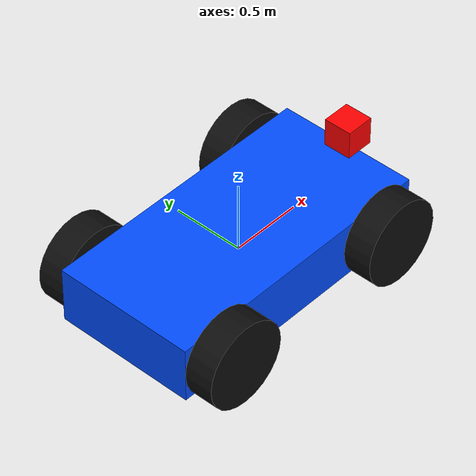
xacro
<?xml version="1.0"?>

<robot name="race_car" xmlns:xacro="http://www.ros.org/wiki/xacro">

<!-- ==================== Materials ==================== -->

  <!-- Material for the car body -->
  <material name="car_blue">
    <color rgba="0.0 0.3 1.0 1.0"/>
  </material>

  <!-- Material for the wheels -->
  <material name="wheel_black">
    <color rgba="0.05 0.05 0.05 1.0"/>
  </material>

  <!-- Material for the camera -->
  <material name="camera_red">
    <color rgba="1.0 0.0 0.0 1.0"/>
  </material>

  <!-- ==================== Base Link ==================== -->
  <!-- Main body of the race car -->
  <link name="base_link">

    <!-- Visual representation -->
    <visual>
      <geometry>
        <box size="2.0 1.0 0.4"/>
      </geometry>
      <material name="car_blue"/>
    </visual>

    <!-- Collision geometry -->
    <collision>
      <geometry>
        <box size="2.0 1.0 0.4"/>
      </geometry>
    </collision>

    <!-- Physical properties -->
    <inertial>
      <mass value="10.0"/>

      <inertia
        ixx="1.0"
        ixy="0.0"
        ixz="0.0"
        iyy="1.0"
        iyz="0.0"
        izz="1.0"/>
    </inertial>

  </link>

  <!-- ==================== Wheel Macro ==================== -->
  <!--
    This macro creates a wheel and its continuous joint.
    Parameters:
      name - wheel name
      x    - position along the X axis
      y    - position along the Y axis
  -->
  <xacro:macro name="wheel" params="name x y">

  <link name="${name}_wheel">

    <visual>
      <origin xyz="0 0 0" rpy="1.5708 0 0"/>
      <geometry>
        <cylinder radius="0.3" length="0.2"/>
      </geometry>
      <material name="wheel_black"/>
    </visual>

    <collision>
      <origin xyz="0 0 0" rpy="1.5708 0 0"/>
      <geometry>
        <cylinder radius="0.3" length="0.2"/>
      </geometry>
    </collision>

    <inertial>
      <mass value="1.0"/>
      <inertia
        ixx="0.05"
        ixy="0.0"
        ixz="0.0"
        iyy="0.05"
        iyz="0.0"
        izz="0.05"/>
    </inertial>

  </link>

  <joint name="${name}_joint" type="continuous">
    <parent link="base_link"/>
    <child link="${name}_wheel"/>
    <origin xyz="${x} ${y} 0" rpy="0 0 0"/>
    <axis xyz="0 1 0"/>
  </joint>

</xacro:macro>

  <!-- ==================== Four Wheels ==================== -->

  <!-- Front wheels -->
  <xacro:wheel name="front_left"  x="0.7"  y="0.6"/>
  <xacro:wheel name="front_right" x="0.7"  y="-0.6"/>

  <!-- Rear wheels -->
  <xacro:wheel name="rear_left"   x="-0.7" y="0.6"/>
  <xacro:wheel name="rear_right"  x="-0.7" y="-0.6"/>

<!-- ==================== Camera ==================== -->

  <!-- Camera link mounted at the front of the car -->
  <link name="camera_link">

    <!-- Visual representation of the camera -->
    <visual>
      <geometry>
        <box size="0.2 0.2 0.2"/>
      </geometry>
      <material name="camera_red"/>
    </visual>

    <!-- Collision geometry -->
    <collision>
      <geometry>
        <box size="0.2 0.2 0.2"/>
      </geometry>
    </collision>

    <!-- Physical properties -->
    <inertial>
      <mass value="0.2"/>

      <inertia
        ixx="0.001"
        ixy="0.0"
        ixz="0.0"
        iyy="0.001"
        iyz="0.0"
        izz="0.001"/>
    </inertial>

  </link>

  <!-- Fixed joint connecting the camera to the base -->
  <joint name="camera_joint" type="fixed">

    <parent link="base_link"/>
    <child link="camera_link"/>

    <!-- Camera position at the front of the car -->
    <origin xyz="1.0 0.0 0.3" rpy="0 0 0"/>

  </joint>

  <!-- ==================== Gazebo Camera Sensor ==================== -->

  <gazebo reference="camera_link">

  <sensor name="front_camera" type="camera">

    <always_on>true</always_on>
    <visualize>true</visualize>
    <update_rate>30.0</update_rate>

    <camera>
      <horizontal_fov>1.047</horizontal_fov>

      <image>
        <width>640</width>
        <height>480</height>
        <format>R8G8B8</format>
      </image>

      <clip>
        <near>0.1</near>
        <far>100.0</far>
      </clip>
    </camera>

  </sensor>

</gazebo>

<gazebo>
  <plugin
    filename="libgz-sim-sensors-system.so"
    name="gz::sim::systems::Sensors">
  </plugin>
</gazebo>

  <!-- ==================== Gazebo Harmonic Diff Drive ==================== -->

<gazebo>

  <plugin
    filename="libgz-sim-diff-drive-system.so"
    name="gz::sim::systems::DiffDrive">

    <!-- Wheel joints -->
    <left_joint>front_left_joint</left_joint>
    <left_joint>rear_left_joint</left_joint>

    <right_joint>front_right_joint</right_joint>
    <right_joint>rear_right_joint</right_joint>

    <!-- Wheel dimensions -->
    <wheel_separation>1.2</wheel_separation>
    <wheel_radius>0.3</wheel_radius>

    <!-- Topics -->
    <topic>/cmd_vel</topic>
    <odom_topic>/odom</odom_topic>

    <!-- Frames -->
    <frame_id>odom</frame_id>
    <child_frame_id>base_link</child_frame_id>

  </plugin>

</gazebo>

</robot>
